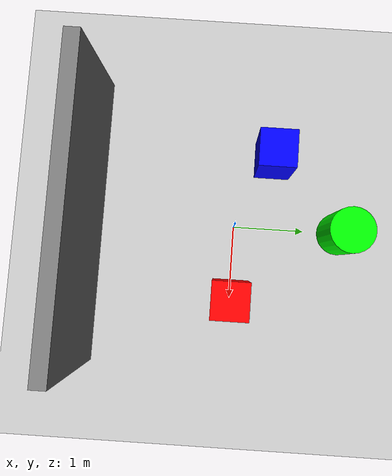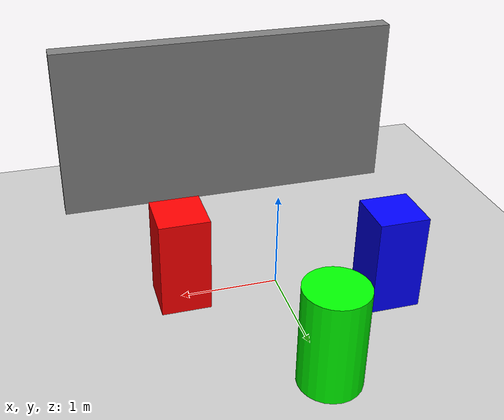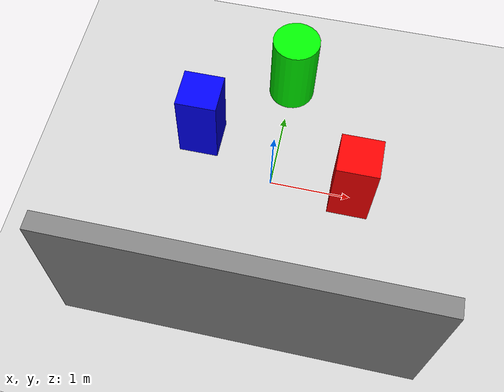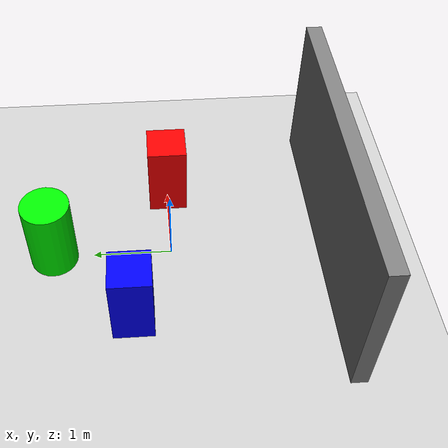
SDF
<?xml version="1.0"?>
<sdf version="1.8">
  <world name="jig_world">

    <!-- Physics -->
   <physics name="1ms" type="ignored">
      <max_step_size>0.004</max_step_size>
      <real_time_factor>1.0</real_time_factor>
      <real_time_update_rate>250</real_time_update_rate>
  </physics>
    <!-- Plugins -->
    <plugin filename="gz-sim-physics-system"
            name="gz::sim::systems::Physics"/>
    <plugin filename="gz-sim-user-commands-system"
            name="gz::sim::systems::UserCommands"/>
    <plugin filename="gz-sim-scene-broadcaster-system"
            name="gz::sim::systems::SceneBroadcaster"/>

    <!-- Light -->
    <light type="directional" name="sun">
      <cast_shadows>true</cast_shadows>
      <pose>0 0 10 0 0 0</pose>
      <diffuse>0.8 0.8 0.8 1</diffuse>
      <specular>0.2 0.2 0.2 1</specular>
      <direction>-0.5 0.1 -0.9</direction>
    </light>

    <!-- Ground plane -->
    <model name="ground_plane">
      <static>true</static>
      <link name="link">
        <collision name="collision">
          <geometry>
            <plane>
              <normal>0 0 1</normal>
              <size>100 100</size>
            </plane>
          </geometry>
        </collision>
        <visual name="visual">
          <geometry>
            <plane>
              <normal>0 0 1</normal>
              <size>100 100</size>
            </plane>
          </geometry>
          <material>
            <ambient>0.8 0.8 0.8 1</ambient>
            <diffuse>0.8 0.8 0.8 1</diffuse>
          </material>
        </visual>
      </link>
    </model>

    <!-- Box obstacle 1 -->
    <model name="box_1">
      <static>true</static>
      <pose>1.0 0.0 0.5 0 0 0</pose>
      <link name="link">
        <collision name="collision">
          <geometry><box><size>0.5 0.5 1.0</size></box></geometry>
        </collision>
        <visual name="visual">
          <geometry><box><size>0.5 0.5 1.0</size></box></geometry>
          <material>
            <ambient>1 0 0 1</ambient>
            <diffuse>1 0 0 1</diffuse>
          </material>
        </visual>
      </link>
    </model>

    <!-- Box obstacle 2 -->
    <model name="box_2">
      <static>true</static>
      <pose>-1.0 0.5 0.5 0 0 0</pose>
      <link name="link">
        <collision name="collision">
          <geometry><box><size>0.5 0.5 1.0</size></box></geometry>
        </collision>
        <visual name="visual">
          <geometry><box><size>0.5 0.5 1.0</size></box></geometry>
          <material>
            <ambient>0 0 1 1</ambient>
            <diffuse>0 0 1 1</diffuse>
          </material>
        </visual>
      </link>
    </model>

    <!-- Cylinder obstacle -->
    <model name="cylinder_1">
      <static>true</static>
      <pose>0.0 1.5 0.5 0 0 0</pose>
      <link name="link">
        <collision name="collision">
          <geometry><cylinder><radius>0.3</radius><length>1.0</length></cylinder></geometry>
        </collision>
        <visual name="visual">
          <geometry><cylinder><radius>0.3</radius><length>1.0</length></cylinder></geometry>
          <material>
            <ambient>0 1 0 1</ambient>
            <diffuse>0 1 0 1</diffuse>
          </material>
        </visual>
      </link>
    </model>

    <!-- Wall -->
    <model name="wall">
      <static>true</static>
      <pose>0.0 -2.0 1.0 0 0 0</pose>
      <link name="link">
        <collision name="collision">
          <geometry><box><size>4.0 0.2 2.0</size></box></geometry>
        </collision>
        <visual name="visual">
          <geometry><box><size>4.0 0.2 2.0</size></box></geometry>
          <material>
            <ambient>0.5 0.5 0.5 1</ambient>
            <diffuse>0.5 0.5 0.5 1</diffuse>
          </material>
        </visual>
      </link>
    </model>

  </world>
</sdf>
